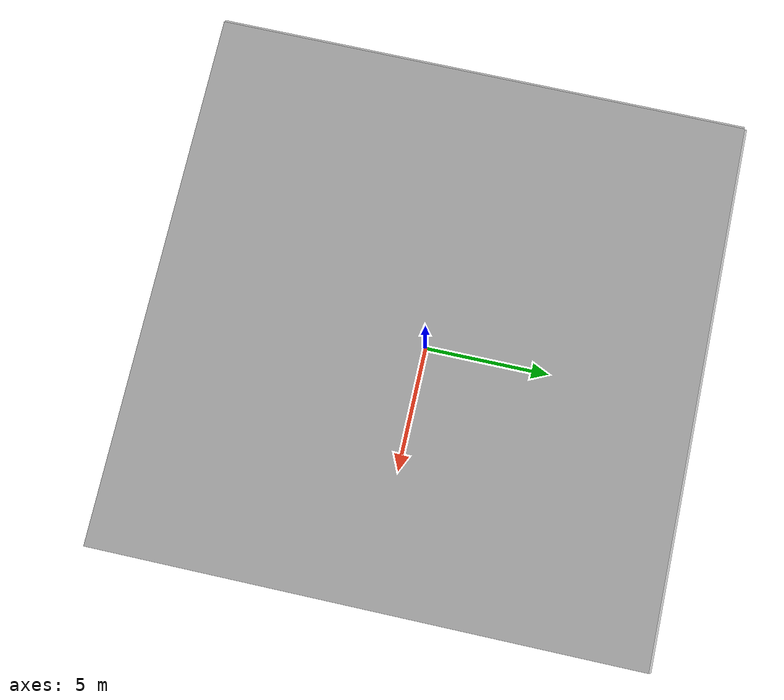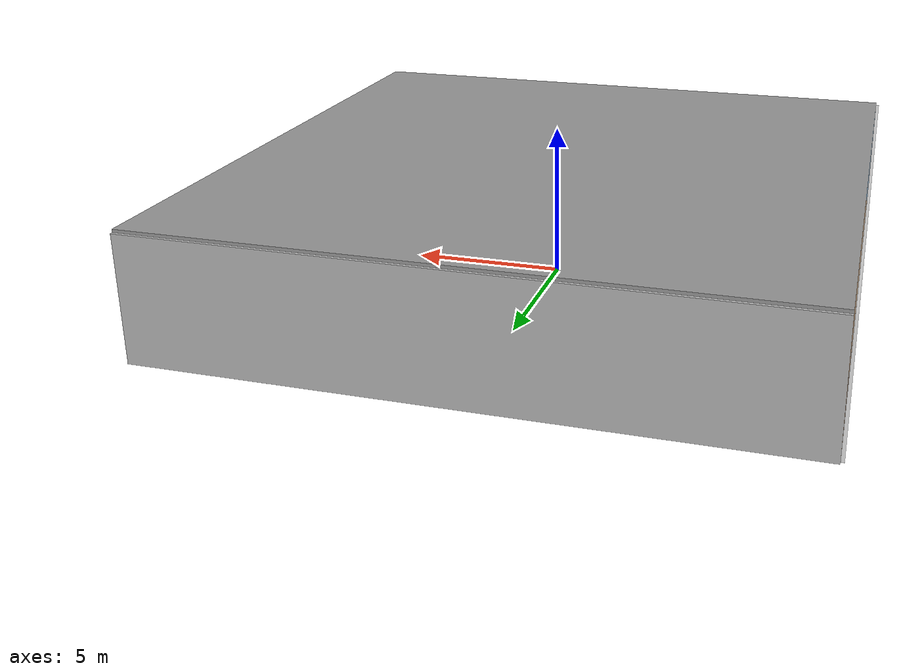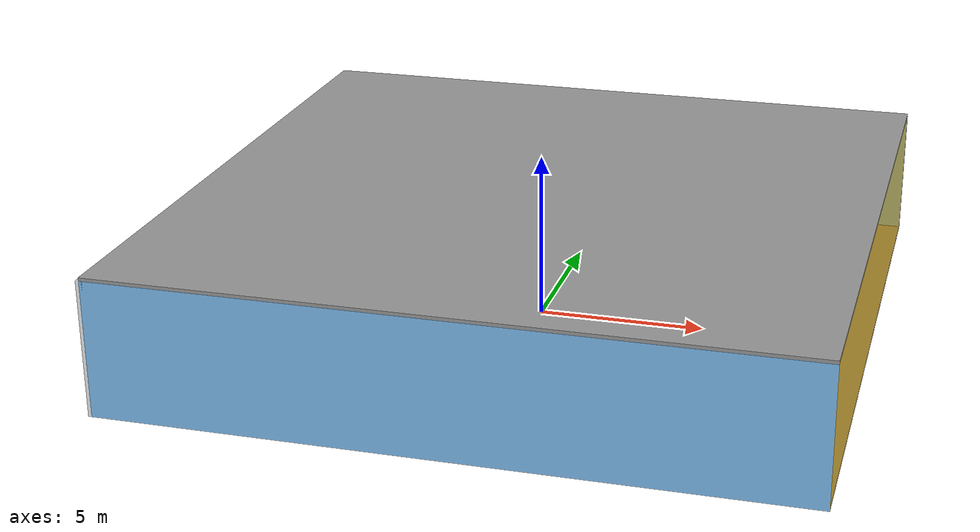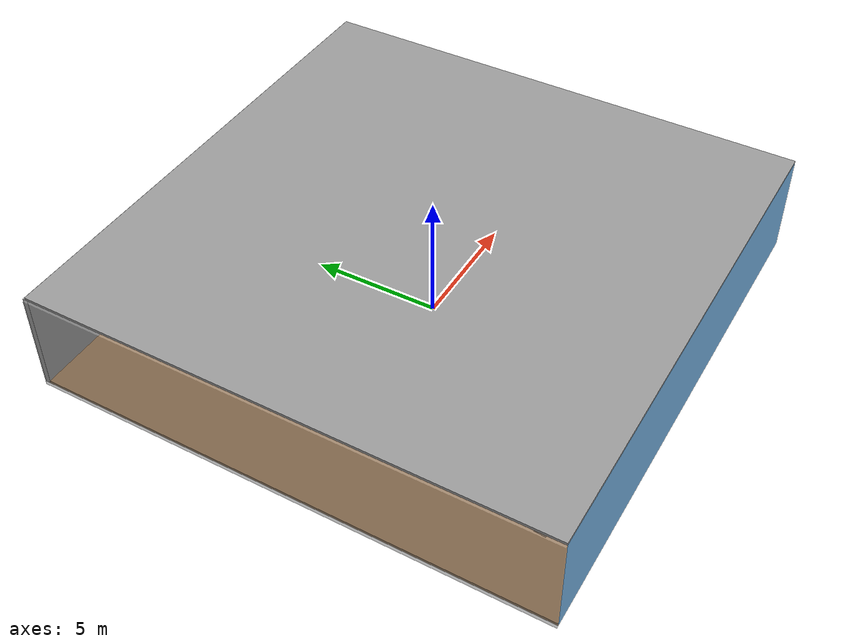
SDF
<sdf version="1.4">
 <world name="default">
  <physics type="ode">
   <max_step_size>0.001</max_step_size>
   <real_time_factor>1</real_time_factor>
   <real_time_update_rate>1000</real_time_update_rate>
   <gravity>0 0 -9.8</gravity>
  </physics>
  <scene><ambient>0.4 0.4 0.4 1</ambient><background>0.7 0.7 0.7 1</background><shadows>1</shadows></scene>
  <model name="Surrounding">
   <static>1</static>
   <link name="Ceiling">
    <collision name="Ceiling_Collision"><geometry><box><size>20 20 0.1</size></box></geometry></collision>
    <visual name="Ceiling_Visual">
     <geometry><box><size>20 20 0.1</size></box></geometry>
     <material>
      <script><uri>file://media/materials/scripts/gazebo.material</uri><name>Gazebo/Grey</name></script>
     </material>
    </visual>
    <pose>0 0 4.05 0 0 0</pose>
   </link>
   <link name="Wall_South">
    <collision name="Wall_South_Collision">
     <geometry><box><size>20 0 4</size></box></geometry>
     <pose>0 0 2 0 -0 0</pose>
    </collision>
    <visual name="Wall_South_Visual">
     <pose>0 0 2 0 -0 0</pose>
     <geometry><box><size>20 0 4</size></box></geometry>
     <material>
      <script><uri>file://media/materials/scripts/gazebo.material</uri><name>Gazebo/SkyBlue</name></script>
     </material>
    </visual>
    <velocity_decay><linear>0</linear><angular>0</angular></velocity_decay>
    <pose>0 -10 0 0 -0 0</pose>
   </link>
   <link name="Wall_East">
    <collision name="Wall_21_Collision">
     <geometry><box><size>20 0 4</size></box></geometry>
     <pose>0 0 2 0 -0 0</pose>
    </collision>
    <visual name="Wall_21_Visual">
     <pose>0 0 2 0 -0 0</pose>
     <geometry><box><size>20 0 4</size></box></geometry>
     <material>
      <script>
       <uri>file://media/materials/scripts/gazebo.material</uri>
       <name>Gazebo/YellowTransparent</name>
      </script>
     </material>
    </visual>
    <velocity_decay><linear>0</linear><angular>0</angular></velocity_decay>
    <pose>10 0 0 0 -0 1.5708</pose>
   </link>
   <link name="Wall_North">
    <collision name="Wall_22_Collision">
     <geometry><box><size>20 0.2 4</size></box></geometry>
     <pose>0 0 2 0 -0 0</pose>
    </collision>
    <visual name="Wall_22_Visual">
     <pose>0 0 2 0 -0 0</pose>
     <geometry><box><size>20 0.2 4</size></box></geometry>
     <material>
      <script><uri>file://media/materials/scripts/gazebo.material</uri><name>Gazebo/CloudySky</name></script>
     </material>
    </visual>
    <velocity_decay><linear>0</linear><angular>0</angular></velocity_decay>
    <pose>0 10 0 0 -0 0</pose>
   </link>
   <link name="Wall_West">
    <collision name="Wall_23_Collision">
     <geometry><box><size>20 0.2 4</size></box></geometry>
     <pose>0 0 2 0 -0 0</pose>
    </collision>
    <visual name="Wall_23_Visual">
     <pose>0 0 2 0 -0 0</pose>
     <geometry><box><size>20 0.2 4</size></box></geometry>
     <material>
      <script><uri>file://media/materials/scripts/gazebo.material</uri><name>Gazebo/GreyTransparent</name></script>
     </material>
    </visual>
    <velocity_decay><linear>0</linear><angular>0</angular></velocity_decay>
    <pose>-10 0 0 0 0 -1.5708</pose>
   </link>
   <link name="Ground_link">
    <collision name="collision">
     <pose>0 0 .05 0 -0 0</pose>
     <geometry><box><size>20 20 0.1</size></box></geometry>
    </collision>
    <visual name="visual">
     <pose>0 0 .05 0 -0 0</pose>
     <geometry><box><size>20 20 0.1</size></box></geometry>
     <material>
      <script><uri>file://media/materials/scripts/gazebo.material</uri><name>Gazebo/Wood</name></script>
     </material>
    </visual>
   </link>
   <static>1</static>
  </model>
  <spherical_coordinates>
   <surface_model>EARTH_WGS84</surface_model>
   <latitude_deg>0</latitude_deg>
   <longitude_deg>0</longitude_deg>
   <elevation>0</elevation>
   <heading_deg>0</heading_deg>
  </spherical_coordinates>
  <light name="lightball_0" type="diffuse">
   <diffuse>0.8 0.8 0.8 1</diffuse>
   <specular>0.2 0.2 0.2 1</specular>
   <attenuation>
    <range>100</range>
    <constant>0.7</constant>
    <linear>0.01</linear>
    <quadratic>0.001</quadratic>
   </attenuation>
   <direction>-0.5 0.1 -0.9</direction>
   <pose>7.10486753098 4.31916054236 2.01071630904 0 0 0</pose>
  </light>
  <light name="lightball_1" type="diffuse">
   <diffuse>0.8 0.8 0.8 1</diffuse>
   <specular>0.2 0.2 0.2 1</specular>
   <attenuation>
    <range>100</range>
    <constant>0.7</constant>
    <linear>0.01</linear>
    <quadratic>0.001</quadratic>
   </attenuation>
   <direction>-0.5 0.1 -0.9</direction>
   <pose>7.68815047069 -2.51666313663 0.936107298985 0 0 0</pose>
  </light>
  <light name="lightball_2" type="diffuse">
   <diffuse>0.8 0.8 0.8 1</diffuse>
   <specular>0.2 0.2 0.2 1</specular>
   <attenuation>
    <range>100</range>
    <constant>0.7</constant>
    <linear>0.01</linear>
    <quadratic>0.001</quadratic>
   </attenuation>
   <direction>-0.5 0.1 -0.9</direction>
   <pose>4.4680666348 0.304956743336 2.41334785905 0 0 0</pose>
  </light>
  <light name="lightball_3" type="diffuse">
   <diffuse>0.8 0.8 0.8 1</diffuse>
   <specular>0.2 0.2 0.2 1</specular>
   <attenuation>
    <range>100</range>
    <constant>0.7</constant>
    <linear>0.01</linear>
    <quadratic>0.001</quadratic>
   </attenuation>
   <direction>-0.5 0.1 -0.9</direction>
   <pose>5.39494479375 -6.96638219542 3.25835533975 0 0 0</pose>
  </light>
  <light name="lightball_4" type="diffuse">
   <diffuse>0.8 0.8 0.8 1</diffuse>
   <specular>0.2 0.2 0.2 1</specular>
   <attenuation>
    <range>100</range>
    <constant>0.7</constant>
    <linear>0.01</linear>
    <quadratic>0.001</quadratic>
   </attenuation>
   <direction>-0.5 0.1 -0.9</direction>
   <pose>0.149320278192 6.53814309127 2.31951453888 0 0 0</pose>
  </light>
  <light name="lightball_5" type="diffuse">
   <diffuse>0.8 0.8 0.8 1</diffuse>
   <specular>0.2 0.2 0.2 1</specular>
   <attenuation>
    <range>100</range>
    <constant>0.7</constant>
    <linear>0.01</linear>
    <quadratic>0.001</quadratic>
   </attenuation>
   <direction>-0.5 0.1 -0.9</direction>
   <pose>8.51437187161 2.30184220855 1.24466874028 0 0 0</pose>
  </light>
  <light name="lightball_6" type="diffuse">
   <diffuse>0.8 0.8 0.8 1</diffuse>
   <specular>0.2 0.2 0.2 1</specular>
   <attenuation>
    <range>100</range>
    <constant>0.7</constant>
    <linear>0.01</linear>
    <quadratic>0.001</quadratic>
   </attenuation>
   <direction>-0.5 0.1 -0.9</direction>
   <pose>1.66745760027 5.36945602266 2.11153832051 0 0 0</pose>
  </light>
  <light name="lightball_7" type="diffuse">
   <diffuse>0.8 0.8 0.8 1</diffuse>
   <specular>0.2 0.2 0.2 1</specular>
   <attenuation>
    <range>100</range>
    <constant>0.7</constant>
    <linear>0.01</linear>
    <quadratic>0.001</quadratic>
   </attenuation>
   <direction>-0.5 0.1 -0.9</direction>
   <pose>-6.15414206632 6.24671680103 2.52974276072 0 0 0</pose>
  </light>
  <light name="lightball_8" type="diffuse">
   <diffuse>0.8 0.8 0.8 1</diffuse>
   <specular>0.2 0.2 0.2 1</specular>
   <attenuation>
    <range>100</range>
    <constant>0.7</constant>
    <linear>0.01</linear>
    <quadratic>0.001</quadratic>
   </attenuation>
   <direction>-0.5 0.1 -0.9</direction>
   <pose>-0.256513993583 0.182840876579 1.20248401493 0 0 0</pose>
  </light>
  <light name="lightball_9" type="diffuse">
   <diffuse>0.8 0.8 0.8 1</diffuse>
   <specular>0.2 0.2 0.2 1</specular>
   <attenuation>
    <range>100</range>
    <constant>0.7</constant>
    <linear>0.01</linear>
    <quadratic>0.001</quadratic>
   </attenuation>
   <direction>-0.5 0.1 -0.9</direction>
   <pose>-1.25800288148 -6.88448803846 0.742810361153 0 0 0</pose>
  </light>
  <light name="lightball_10" type="diffuse">
   <diffuse>0.8 0.8 0.8 1</diffuse>
   <specular>0.2 0.2 0.2 1</specular>
   <attenuation>
    <range>100</range>
    <constant>0.7</constant>
    <linear>0.01</linear>
    <quadratic>0.001</quadratic>
   </attenuation>
   <direction>-0.5 0.1 -0.9</direction>
   <pose>-8.93806174253 2.80340057426 3.3555742039 0 0 0</pose>
  </light>
  <include><uri>model://cabinet</uri><pose>-7.10733002746 -8.09107327458 0 0 0 1.52211782866</pose></include>
  <include><uri>model://cabinet</uri><pose>-3.83552521871 -1.13642793652 0 0 0 1.29032187665</pose></include>
  <include><uri>model://cabinet</uri><pose>0.897479268849 1.50006248991 0 0 0 2.38420613669</pose></include>
  <include>
   <uri>model://construction_cone</uri>
   <pose>7.29783765235 4.66122303922 0 0 0 0.697253512986</pose>
  </include>
 </world>
</sdf>

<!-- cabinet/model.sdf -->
<sdf version="1.5">
  <model name="cabinet">
    <static>true</static>
    <link name="cabinet_bottom_plate">
      <inertial>
        <pose>0 0 -1 0 0 0</pose>
        <inertia>
          <ixx>2.050000</ixx>
          <ixy>0</ixy>
          <ixz>0</ixz>
          <iyy>2.050000</iyy>
          <iyz>0</iyz>
          <izz>2.050000</izz>
        </inertia>
        <mass>25.000000</mass>
      </inertial>
      <collision name="cabinet_bottom_plate_geom">
        <pose>0 0 0.010000 0 0 0</pose>
        <geometry>
          <box>
            <size>0.450000 0.450000 0.020000</size>
          </box>
        </geometry>
      </collision>
      <visual name="cabinet_bottom_plate_geom_visual">
        <pose>0 0 0.010000 0 0 0</pose>
        <geometry>
          <box>
            <size>0.450000 0.450000 0.020000</size>
          </box>
        </geometry>
        <material>
          <script>
            <uri>model://media/materials/scripts/gazebo.material</uri>
            <name>Gazebo/Wood</name>
          </script>
        </material>
      </visual>
      <collision name="cabinet_bottom_plate_geom_cabinet_back_plate">
        <pose>0.235000 0 0.510000 0 0 0</pose>
        <geometry>
          <box>
            <size>0.020000 0.450000 1.020000</size>
          </box>
        </geometry>
      </collision>
      <visual name="cabinet_bottom_plate_geom_cabinet_back_plate_visual">
        <pose>0.235000 0 0.510000 0 0 0</pose>
        <geometry>
          <box>
            <size>0.020000 0.450000 1.020000</size>
          </box>
        </geometry>
        <material>
          <script>
            <uri>model://media/materials/scripts/gazebo.material</uri>
            <name>Gazebo/Wood</name>
          </script>
        </material>
      </visual>
      <collision name="cabinet_bottom_plate_geom_cabinet_left_plate">
        <pose>0 0.235000 0.510000 0 0 0</pose>
        <geometry>
          <box>
            <size>0.450000 0.020000 1.020000</size>
          </box>
        </geometry>
      </collision>
      <visual name="cabinet_bottom_plate_geom_cabinet_left_plate_visual">
        <pose>0 0.235000 0.510000 0 0 0</pose>
        <geometry>
          <box>
            <size>0.450000 0.020000 1.020000</size>
          </box>
        </geometry>
        <material>
          <script>
            <uri>model://media/materials/scripts/gazebo.material</uri>
            <name>Gazebo/Wood</name>
          </script>
        </material>
      </visual>
      <collision name="cabinet_bottom_plate_geom_cabinet_middle_plate">
        <pose>0 0 0.510000 0 0 0</pose>
        <geometry>
          <box>
            <size>0.450000 0.450000 0.020000</size>
          </box>
        </geometry>
      </collision>
      <visual name="cabinet_bottom_plate_geom_cabinet_middle_plate_visual">
        <pose>0 0 0.510000 0 0 0</pose>
        <geometry>
          <box>
            <size>0.450000 0.450000 0.020000</size>
          </box>
        </geometry>
        <material>
          <script>
            <uri>model://media/materials/scripts/gazebo.material</uri>
            <name>Gazebo/Wood</name>
          </script>
        </material>
      </visual>
      <collision name="cabinet_bottom_plate_geom_cabinet_right_plate">
        <pose>0 -0.235000 0.510000 0 0 0</pose>
        <geometry>
          <box>
            <size>0.450000 0.020000 1.020000</size>
          </box>
        </geometry>
      </collision>
      <visual name="cabinet_bottom_plate_geom_cabinet_right_plate_visual">
        <pose>0 -0.235000 0.510000 0 0 0</pose>
        <geometry>
          <box>
            <size>0.450000 0.020000 1.020000</size>
          </box>
        </geometry>
        <material>
          <script>
            <uri>model://media/materials/scripts/gazebo.material</uri>
            <name>Gazebo/Wood</name>
          </script>
        </material>
      </visual>
      <collision name="cabinet_bottom_plate_geom_cabinet_top_plate">
        <pose>0 0 1.010000 0 0 0</pose>
        <geometry>
          <box>
            <size>0.450000 0.450000 0.020000</size>
          </box>
        </geometry>
      </collision>
      <visual name="cabinet_bottom_plate_geom_cabinet_top_plate_visual">
        <pose>0 0 1.010000 0 0 0</pose>
        <geometry>
          <box>
            <size>0.450000 0.450000 0.020000</size>
          </box>
        </geometry>
        <material>
          <script>
            <uri>model://media/materials/scripts/gazebo.material</uri>
            <name>Gazebo/Wood</name>
          </script>
        </material>
      </visual>
    </link>
  </model>
</sdf>

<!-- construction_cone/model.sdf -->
<sdf version="1.5">
  <model name="Construction Cone">
    <link name="link">
      <collision name="collision">
        <geometry>
          <mesh>
            <scale>10 10 10</scale>
            <uri>file://isr-testbed/construction_cone/meshes/construction_cone.dae</uri>
          </mesh>
        </geometry>
      </collision>
      <visual name="visual">
        <geometry>
          <mesh>
            <scale>10 10 10</scale>
            <uri>file://isr-testbed/construction_cone/meshes/construction_cone.dae</uri>
          </mesh>
        </geometry>
      </visual>
    </link>
  </model>
</sdf>
